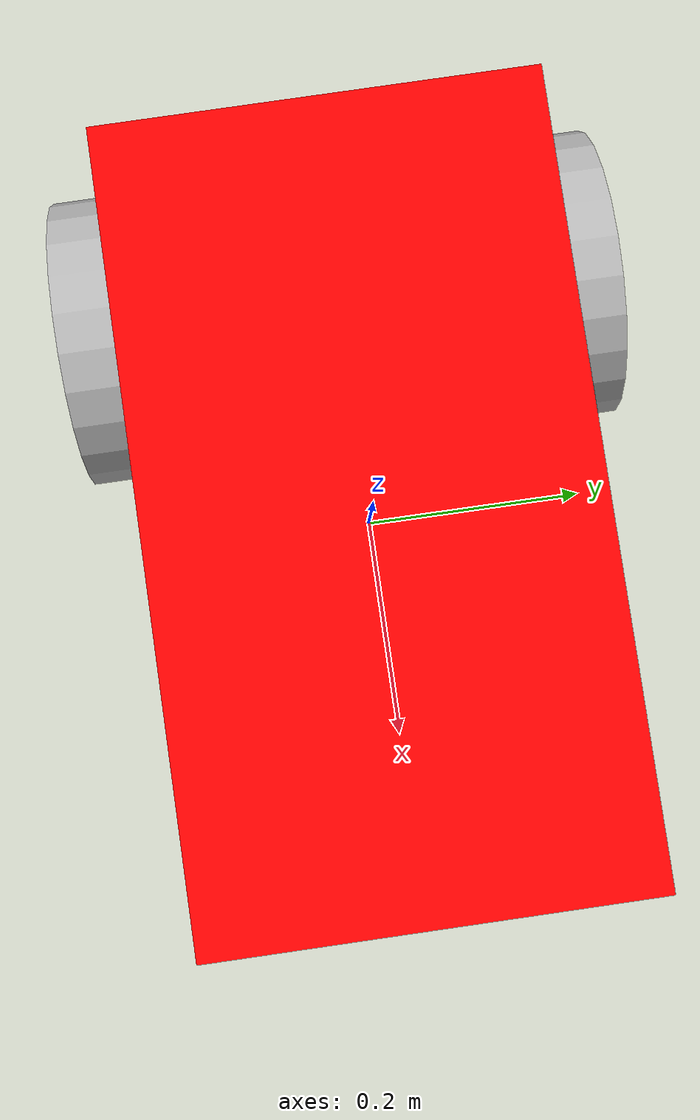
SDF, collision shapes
<?xml version='1.0'?>
<sdf version='1.7'>
  <model name='basic_mobile_bot1'>
    <link name='base_footprint'>
      <self_collide>0</self_collide>
      <inertial>
        <pose>0 0 0 0 -0 0</pose>
        <inertia>
          <ixx>1</ixx>
          <ixy>0</ixy>
          <ixz>0</ixz>
          <iyy>1</iyy>
          <iyz>0</iyz>
          <izz>1</izz>
        </inertia>
        <mass>1</mass>
      </inertial>
      <enable_wind>0</enable_wind>
      <kinematic>0</kinematic>
      <pose>0 0 0 0 -0 0</pose>
    </link>
    <link name='base_link'>
      <self_collide>0</self_collide>
      <inertial>
        <pose>0 0 0 0 -0 0</pose>
        <inertia>
          <ixx>1</ixx>
          <ixy>0</ixy>
          <ixz>0</ixz>
          <iyy>1</iyy>
          <iyz>0</iyz>
          <izz>1</izz>
        </inertia>
        <mass>1</mass>
      </inertial>
      <enable_wind>0</enable_wind>
      <kinematic>0</kinematic>
      <pose>0 0 0 0 -0 0</pose>
      <gravity>1</gravity>
      <visual name='base_visual'>
        <pose>0 0 -0.05 1.5708 -0 -3.14159</pose>
        <geometry>
          <mesh>
            <uri>model://basic_mobile_bot_description/meshes/robot_base.stl</uri>
            <scale>1 1 1</scale>
          </mesh>
        </geometry>
        <material>
          <ambient>1 0 0 1</ambient>
          <diffuse>1 0 0 1</diffuse>
          <specular>0 0 0 1</specular>
          <emissive>0 0 0 1</emissive>
          <shader type='pixel'>
            <normal_map>__default__</normal_map>
          </shader>
          <script>
            <name>ModelPreview_1::base_link::base_visual_MATERIAL_</name>
            <uri>__default__</uri>
          </script>
        </material>
        <transparency>0</transparency>
        <cast_shadows>1</cast_shadows>
      </visual>
      <collision name='base_collision'>
        <laser_retro>0</laser_retro>
        <max_contacts>10</max_contacts>
        <pose>0 0 0.1 0 -0 0</pose>
        <geometry>
          <box>
            <size>0.7 0.39 0.2</size>
          </box>
        </geometry>
        <surface>
          <friction>
            <ode>
              <mu>1</mu>
              <mu2>1</mu2>
              <fdir1>0 0 0</fdir1>
              <slip1>0</slip1>
              <slip2>0</slip2>
            </ode>
            <torsional>
              <coefficient>1</coefficient>
              <patch_radius>0</patch_radius>
              <surface_radius>0</surface_radius>
              <use_patch_radius>1</use_patch_radius>
              <ode>
                <slip>0</slip>
              </ode>
            </torsional>
          </friction>
          <bounce>
            <restitution_coefficient>0</restitution_coefficient>
            <threshold>1e+06</threshold>
          </bounce>
          <contact>
            <collide_without_contact>0</collide_without_contact>
            <collide_without_contact_bitmask>1</collide_without_contact_bitmask>
            <collide_bitmask>1</collide_bitmask>
            <ode>
              <soft_cfm>0</soft_cfm>
              <soft_erp>0.2</soft_erp>
              <kp>1e+13</kp>
              <kd>1</kd>
              <max_vel>0.01</max_vel>
              <min_depth>0</min_depth>
            </ode>
            <bullet>
              <split_impulse>1</split_impulse>
              <split_impulse_penetration_threshold>-0.01</split_impulse_penetration_threshold>
              <soft_cfm>0</soft_cfm>
              <soft_erp>0.2</soft_erp>
              <kp>1e+13</kp>
              <kd>1</kd>
            </bullet>
          </contact>
        </surface>
      </collision>
    </link>
    <link name='drivewhl_l_link'>
      <pose>-0.221 0.23 -0.05 3.13454 1.57079 -1.57784</pose>
      <self_collide>0</self_collide>
      <inertial>
        <pose>0 0 0 0 -0 0</pose>
        <inertia>
          <ixx>1</ixx>
          <ixy>0</ixy>
          <ixz>0</ixz>
          <iyy>1</iyy>
          <iyz>0</iyz>
          <izz>1</izz>
        </inertia>
        <mass>1</mass>
      </inertial>
      <enable_wind>0</enable_wind>
      <kinematic>0</kinematic>
      <visual name='drivewhl_l_visual'>
        <geometry>
          <cylinder>
            <radius>0.14</radius>
            <length>0.06</length>
          </cylinder>
        </geometry>
        <material>
          <shader type='pixel'/>
        </material>
        <pose>0 0 0 0 -0 0</pose>
        <transparency>0</transparency>
        <cast_shadows>1</cast_shadows>
      </visual>
      <collision name='drivewhl_l_collision'>
        <laser_retro>0</laser_retro>
        <max_contacts>10</max_contacts>
        <pose>0 0 0 0 -0 0</pose>
        <geometry>
          <cylinder>
            <radius>0.14</radius>
            <length>0.06</length>
          </cylinder>
        </geometry>
        <surface>
          <friction>
            <ode>
              <mu>1</mu>
              <mu2>1</mu2>
              <fdir1>0 0 0</fdir1>
              <slip1>0</slip1>
              <slip2>0</slip2>
            </ode>
            <torsional>
              <coefficient>1</coefficient>
              <patch_radius>0</patch_radius>
              <surface_radius>0</surface_radius>
              <use_patch_radius>1</use_patch_radius>
              <ode>
                <slip>0</slip>
              </ode>
            </torsional>
          </friction>
          <bounce>
            <restitution_coefficient>0</restitution_coefficient>
            <threshold>1e+06</threshold>
          </bounce>
          <contact>
            <collide_without_contact>0</collide_without_contact>
            <collide_without_contact_bitmask>1</collide_without_contact_bitmask>
            <collide_bitmask>1</collide_bitmask>
            <ode>
              <soft_cfm>0</soft_cfm>
              <soft_erp>0.2</soft_erp>
              <kp>1e+13</kp>
              <kd>1</kd>
              <max_vel>0.01</max_vel>
              <min_depth>0</min_depth>
            </ode>
            <bullet>
              <split_impulse>1</split_impulse>
              <split_impulse_penetration_threshold>-0.01</split_impulse_penetration_threshold>
              <soft_cfm>0</soft_cfm>
              <soft_erp>0.2</soft_erp>
              <kp>1e+13</kp>
              <kd>1</kd>
            </bullet>
          </contact>
        </surface>
      </collision>
    </link>
    <link name='drivewhl_r_link'>
      <pose>-0.221 -0.23 -0.05 3.13454 1.57079 -1.57784</pose>
      <self_collide>0</self_collide>
      <inertial>
        <pose>0 0 0 0 -0 0</pose>
        <inertia>
          <ixx>1</ixx>
          <ixy>0</ixy>
          <ixz>0</ixz>
          <iyy>1</iyy>
          <iyz>0</iyz>
          <izz>1</izz>
        </inertia>
        <mass>1</mass>
      </inertial>
      <enable_wind>0</enable_wind>
      <kinematic>0</kinematic>
      <visual name='drivewhl_r_visual'>
        <geometry>
          <cylinder>
            <radius>0.14</radius>
            <length>0.06</length>
          </cylinder>
        </geometry>
        <material>
          <shader type='pixel'/>
        </material>
        <pose>0 0 0 0 -0 0</pose>
        <transparency>0</transparency>
        <cast_shadows>1</cast_shadows>
      </visual>
      <collision name='drivewhl_r_collision'>
        <laser_retro>0</laser_retro>
        <max_contacts>10</max_contacts>
        <pose>0 0 0 0 -0 0</pose>
        <geometry>
          <cylinder>
            <radius>0.14</radius>
            <length>0.06</length>
          </cylinder>
        </geometry>
        <surface>
          <friction>
            <ode>
              <mu>1</mu>
              <mu2>1</mu2>
              <fdir1>0 0 0</fdir1>
              <slip1>0</slip1>
              <slip2>0</slip2>
            </ode>
            <torsional>
              <coefficient>1</coefficient>
              <patch_radius>0</patch_radius>
              <surface_radius>0</surface_radius>
              <use_patch_radius>1</use_patch_radius>
              <ode>
                <slip>0</slip>
              </ode>
            </torsional>
          </friction>
          <bounce>
            <restitution_coefficient>0</restitution_coefficient>
            <threshold>1e+06</threshold>
          </bounce>
          <contact>
            <collide_without_contact>0</collide_without_contact>
            <collide_without_contact_bitmask>1</collide_without_contact_bitmask>
            <collide_bitmask>1</collide_bitmask>
            <ode>
              <soft_cfm>0</soft_cfm>
              <soft_erp>0.2</soft_erp>
              <kp>1e+13</kp>
              <kd>1</kd>
              <max_vel>0.01</max_vel>
              <min_depth>0</min_depth>
            </ode>
            <bullet>
              <split_impulse>1</split_impulse>
              <split_impulse_penetration_threshold>-0.01</split_impulse_penetration_threshold>
              <soft_cfm>0</soft_cfm>
              <soft_erp>0.2</soft_erp>
              <kp>1e+13</kp>
              <kd>1</kd>
            </bullet>
          </contact>
        </surface>
      </collision>
    </link>
    <link name='front_caster'>
      <pose>0.217 0 -0.1 0 -0 0</pose>
      <self_collide>0</self_collide>
      <inertial>
        <pose>0 0 0 0 -0 0</pose>
        <inertia>
          <ixx>1</ixx>
          <ixy>0</ixy>
          <ixz>0</ixz>
          <iyy>1</iyy>
          <iyz>0</iyz>
          <izz>1</izz>
        </inertia>
        <mass>1</mass>
      </inertial>
      <enable_wind>0</enable_wind>
      <kinematic>0</kinematic>
      <visual name='front_caster_visual'>
        <geometry>
          <sphere>
            <radius>0.09</radius>
          </sphere>
        </geometry>
        <material>
          <shader type='pixel'/>
        </material>
        <pose>0 0 0 0 -0 0</pose>
        <transparency>0</transparency>
        <cast_shadows>1</cast_shadows>
      </visual>
      <collision name='collision'>
        <laser_retro>0</laser_retro>
        <max_contacts>10</max_contacts>
        <pose>0 0 0 0 -0 0</pose>
        <geometry>
          <sphere>
            <radius>0.09</radius>
          </sphere>
        </geometry>
        <surface>
          <friction>
            <ode>
              <mu>0.01</mu>
              <mu2>0.01</mu2>
              <fdir1>0 0 0</fdir1>
              <slip1>1</slip1>
              <slip2>1</slip2>
            </ode>
            <torsional>
              <coefficient>1</coefficient>
              <patch_radius>0</patch_radius>
              <surface_radius>0</surface_radius>
              <use_patch_radius>1</use_patch_radius>
              <ode>
                <slip>0</slip>
              </ode>
            </torsional>
          </friction>
          <bounce>
            <restitution_coefficient>0</restitution_coefficient>
            <threshold>1e+06</threshold>
          </bounce>
          <contact>
            <collide_without_contact>0</collide_without_contact>
            <collide_without_contact_bitmask>1</collide_without_contact_bitmask>
            <collide_bitmask>1</collide_bitmask>
            <ode>
              <soft_cfm>0</soft_cfm>
              <soft_erp>0.2</soft_erp>
              <kp>1e+13</kp>
              <kd>1</kd>
              <max_vel>0.01</max_vel>
              <min_depth>0</min_depth>
            </ode>
            <bullet>
              <split_impulse>1</split_impulse>
              <split_impulse_penetration_threshold>-0.01</split_impulse_penetration_threshold>
              <soft_cfm>0</soft_cfm>
              <soft_erp>0.2</soft_erp>
              <kp>1e+13</kp>
              <kd>1</kd>
            </bullet>
          </contact>
        </surface>
      </collision>
    </link>
    <link name='gps_link'>
      <sensor name='bmb_gps' type='gps'>
        <always_on>1</always_on>
        <update_rate>10</update_rate>
        <gps>
          <position_sensing>
            <horizontal>
              <noise type='gaussian'>
                <mean>0</mean>
                <stddev>0.01</stddev>
              </noise>
            </horizontal>
            <vertical>
              <noise type='gaussian'>
                <mean>0</mean>
                <stddev>1</stddev>
              </noise>
            </vertical>
          </position_sensing>
        </gps>
        <plugin name='basic_mobile_bot_gps' filename='libgazebo_ros_gps_sensor.so'>
          <ros>
            <remapping>~/out:=gps/fix</remapping>
          </ros>
        </plugin>
      </sensor>
      <self_collide>0</self_collide>
      <inertial>
        <pose>0 0 0 0 -0 0</pose>
        <inertia>
          <ixx>1</ixx>
          <ixy>0</ixy>
          <ixz>0</ixz>
          <iyy>1</iyy>
          <iyz>0</iyz>
          <izz>1</izz>
        </inertia>
        <mass>1</mass>
      </inertial>
      <enable_wind>0</enable_wind>
      <kinematic>0</kinematic>
      <pose>0 0 0 0 -0 0</pose>
    </link>
    <link name='imu_link'>
      <gravity>1</gravity>
      <sensor name='bmb_imu' type='imu'>
        <always_on>1</always_on>
        <update_rate>100</update_rate>
        <visualize>1</visualize>
        <imu>
          <angular_velocity>
            <x>
              <noise type='gaussian'>
                <mean>0</mean>
                <stddev>0.0002</stddev>
              </noise>
            </x>
            <y>
              <noise type='gaussian'>
                <mean>0</mean>
                <stddev>0.0002</stddev>
              </noise>
            </y>
            <z>
              <noise type='gaussian'>
                <mean>0</mean>
                <stddev>0.0002</stddev>
              </noise>
            </z>
          </angular_velocity>
          <linear_acceleration>
            <x>
              <noise type='gaussian'>
                <mean>0</mean>
                <stddev>0.017</stddev>
              </noise>
            </x>
            <y>
              <noise type='gaussian'>
                <mean>0</mean>
                <stddev>0.017</stddev>
              </noise>
            </y>
            <z>
              <noise type='gaussian'>
                <mean>0</mean>
                <stddev>0.017</stddev>
              </noise>
            </z>
          </linear_acceleration>
          <angular_velocity/>
          <linear_acceleration/>
          <orientation>
            <x>
              <noise type='gaussian'>
                <mean>0.0</mean>
                <stddev>2e-3</stddev>
              </noise>
            </x>
            <y>
              <noise type='gaussian'>
                <mean>0.0</mean>
                <stddev>2e-3</stddev>
              </noise>
            </y>
            <z>
              <noise type='gaussian'>
                <mean>0.0</mean>
                <stddev>2e-3</stddev>
              </noise>
            </z>
          </orientation>
        </imu>
        <plugin name='basic_mobile_bot_imu' filename='libgazebo_ros_imu_sensor.so'>
          <initial_orientation_as_reference>0</initial_orientation_as_reference>
          <frame_name>imu_link</frame_name>
          <ros>
            <namespace>/imu</namespace>
            <remapping>~/out:=data</remapping>
          </ros>
        </plugin>
      </sensor>
      <self_collide>0</self_collide>
      <inertial>
        <pose>0 0 0 0 -0 0</pose>
        <inertia>
          <ixx>1</ixx>
          <ixy>0</ixy>
          <ixz>0</ixz>
          <iyy>1</iyy>
          <iyz>0</iyz>
          <izz>1</izz>
        </inertia>
        <mass>1</mass>
      </inertial>
      <enable_wind>0</enable_wind>
      <kinematic>0</kinematic>
      <pose>0 0 0 0 -0 0</pose>
    </link>
    <joint name='base_joint' type='fixed'>
      <parent>base_footprint</parent>
      <child>base_link</child>
      <pose>0 0 0 0 -0 0</pose>
      <physics>
        <ode>
          <limit>
            <cfm>0</cfm>
            <erp>0.2</erp>
          </limit>
          <suspension>
            <cfm>0</cfm>
            <erp>0.2</erp>
          </suspension>
        </ode>
      </physics>
    </joint>
    <joint name='caster_joint' type='fixed'>
      <parent>base_link</parent>
      <child>front_caster</child>
      <pose>0 0 0 0 -0 0</pose>
      <physics>
        <ode>
          <limit>
            <cfm>0</cfm>
            <erp>0.2</erp>
          </limit>
          <suspension>
            <cfm>0</cfm>
            <erp>0.2</erp>
          </suspension>
        </ode>
      </physics>
    </joint>
    <joint name='drivewhl_l_joint' type='revolute'>
      <parent>base_link</parent>
      <child>drivewhl_l_link</child>
      <pose>0 0 0 0 -0 0</pose>
      <axis>
        <xyz>0 0 1</xyz>
        <limit>
          <lower>-1e+16</lower>
          <upper>1e+16</upper>
          <effort>-1</effort>
          <velocity>-1</velocity>
        </limit>
        <dynamics>
          <spring_reference>0</spring_reference>
          <spring_stiffness>0</spring_stiffness>
          <damping>0</damping>
          <friction>0</friction>
        </dynamics>
      </axis>
      <physics>
        <ode>
          <limit>
            <cfm>0</cfm>
            <erp>0.2</erp>
          </limit>
          <suspension>
            <cfm>0</cfm>
            <erp>0.2</erp>
          </suspension>
        </ode>
      </physics>
    </joint>
    <joint name='drivewhl_r_joint' type='revolute'>
      <parent>base_link</parent>
      <child>drivewhl_r_link</child>
      <pose>0 0 0 0 -0 0</pose>
      <axis>
        <xyz>0 0 1</xyz>
        <limit>
          <lower>-1e+16</lower>
          <upper>1e+16</upper>
          <effort>-1</effort>
          <velocity>-1</velocity>
        </limit>
        <dynamics>
          <spring_reference>0</spring_reference>
          <spring_stiffness>0</spring_stiffness>
          <damping>0</damping>
          <friction>0</friction>
        </dynamics>
      </axis>
      <physics>
        <ode>
          <limit>
            <cfm>0</cfm>
            <erp>0.2</erp>
          </limit>
          <suspension>
            <cfm>0</cfm>
            <erp>0.2</erp>
          </suspension>
        </ode>
      </physics>
    </joint>
    <joint name='gps_joint' type='fixed'>
      <parent>base_link</parent>
      <child>gps_link</child>
      <pose>0 0 0 0 -0 0</pose>
      <physics>
        <ode>
          <limit>
            <cfm>0</cfm>
            <erp>0.2</erp>
          </limit>
          <suspension>
            <cfm>0</cfm>
            <erp>0.2</erp>
          </suspension>
        </ode>
      </physics>
    </joint>
    <joint name='imu_joint' type='fixed'>
      <parent>base_link</parent>
      <child>imu_link</child>
      <pose>0 0 0 0 -0 0</pose>
      <physics>
        <ode>
          <limit>
            <cfm>0</cfm>
            <erp>0.2</erp>
          </limit>
          <suspension>
            <cfm>0</cfm>
            <erp>0.2</erp>
          </suspension>
        </ode>
      </physics>
    </joint>
    <static>0</static>
    <allow_auto_disable>1</allow_auto_disable>
    <plugin name='basic_mobile_bot_diff_drive' filename='libgazebo_ros_diff_drive.so'>
      <update_rate>30</update_rate>
      <left_joint>drivewhl_l_joint</left_joint>
      <right_joint>drivewhl_r_joint</right_joint>
      <wheel_separation>0.52</wheel_separation>
      <wheel_diameter>0.28</wheel_diameter>
      <max_wheel_torque>20</max_wheel_torque>
      <max_wheel_acceleration>1.0</max_wheel_acceleration>
      <command_topic>cmd_vel</command_topic>
      <publish_odom>1</publish_odom>
      <publish_odom_tf>0</publish_odom_tf>
      <publish_wheel_tf>0</publish_wheel_tf>
      <odometry_topic>odom</odometry_topic>
      <odometry_frame>odom</odometry_frame>
      <robot_base_frame>base_footprint</robot_base_frame>
      <odometry_source>0</odometry_source>
      <ros>
        <remapping>odom:=wheel/odometry</remapping>
      </ros>
    </plugin>
    <plugin name='basic_mobile_bot_joint_state' filename='libgazebo_ros_joint_state_publisher.so'>
      <ros>
        <remapping>~/out:=joint_states</remapping>
      </ros>
      <update_rate>30</update_rate>
      <joint_name>drivewhl_l_joint</joint_name>
      <joint_name>drivewhl_r_joint</joint_name>
    </plugin>
  </model>
</sdf>
